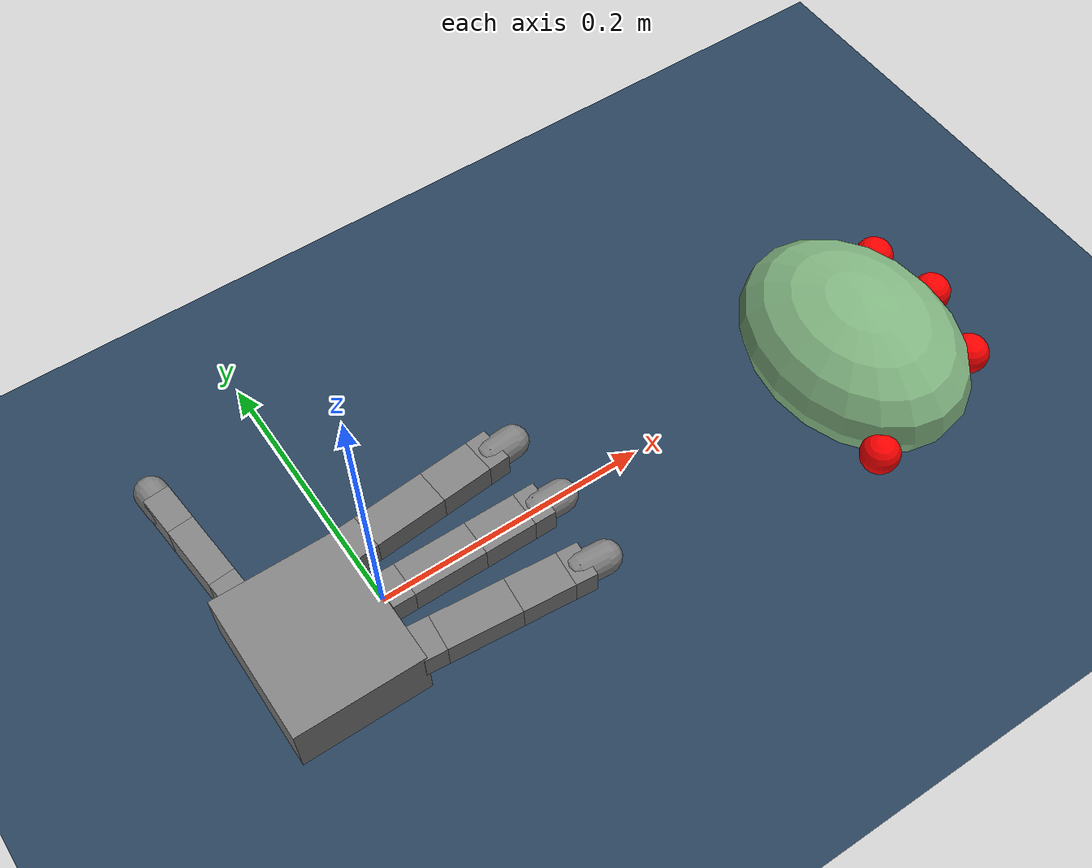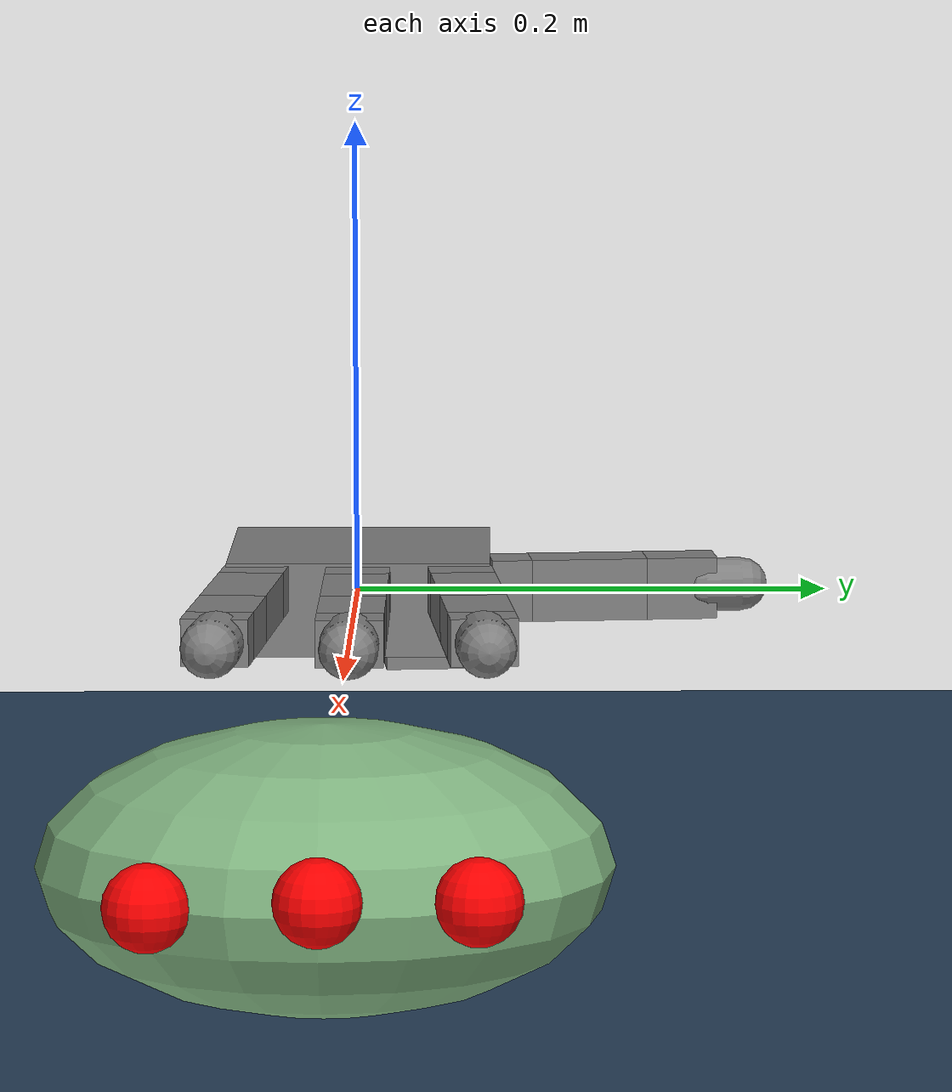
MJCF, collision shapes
<mujoco model="left_hand_closed_grab scene">
  <include file="../left_hand.xml"/>

  <statistic center="0 0 0" extent="0.3"/>

  <visual>
    <rgba haze="0.15 0.25 0.35 1"/>
    <quality shadowsize="8192"/>
    <global azimuth="220" elevation="-40"/>
  </visual>

  <asset>
    <texture type="skybox" builtin="gradient" rgb1="0.3 0.5 0.7" rgb2="0 0 0" width="512" height="3072"/>
    <texture type="2d" name="groundplane" builtin="checker" mark="edge" rgb1="0.2 0.3 0.4" rgb2="0.1 0.2 0.3"
      markrgb="0.8 0.8 0.8" width="300" height="300"/>
    <material name="groundplane" texture="groundplane" texuniform="true" texrepeat="5 5" reflectance="0.2"/>
  </asset>

  <worldbody>
    <light pos="0 0 1"/>
    <light pos="0.3 0 1.5" dir="0 0 -1" directional="true"/>
    <geom name="floor" pos="0 0 -0.1" size="0 0 0.05" type="plane" material="groundplane" contype="0" conaffinity="0"/>
    <site name="target_dot1" pos="0.46286335 -0.05693109 -0.02389508" size="0.015" rgba="1 0 0 1" />
    <site name="target_dot2" pos="0.475353206  0 -0.0191418818" size="0.015" rgba="1 0 0 1" />
    <site name="target_dot3" pos="0.46501551  0.05308591 -0.02152683" size="0.015" rgba="1 0 0 1" />
    <site name="target_dot4" pos="0.35409264 -0.08491088 -0.02898133" size="0.015" rgba="1 0 0 1" />
    <body name="object" pos="0.4 0 -0.025">
      <geom type="ellipsoid" size="0.075 0.1 0.05" rgba="0.5 0.7 0.5 1" condim="6" priority="1"
        friction="0.7 0.002 0.002" margin="-0.01" gap="0.001"/>
    </body>
  </worldbody>
</mujoco>

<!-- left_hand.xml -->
<mujoco model="allegro_left">
  <compiler angle="radian" meshdir="assets" autolimits="true"/>

  <option cone="elliptic" impratio="10"/>

  <default>
    <default class="allegro_left">
      <joint axis="0 1 0" damping=".1"/>
      <position kp="1"/>
      <geom density="800"/>

      <default class="visual">
        <geom type="mesh" contype="0" conaffinity="0" group="2" material="black"/>
        <default class="palm_visual">
          <geom mesh="base_link"/>
        </default>
        <default class="base_visual">
          <geom mesh="link_0.0"/>
        </default>
        <default class="proximal_visual">
          <geom mesh="link_1.0"/>
        </default>
        <default class="medial_visual">
          <geom mesh="link_2.0"/>
        </default>
        <default class="distal_visual">
          <geom mesh="link_3.0"/>
        </default>
        <default class="fingertip_visual">
          <geom pos="0 0 0.0267" material="white" mesh="link_3.0_tip"/>
        </default>
        <default class="thumbtip_visual">
          <geom pos="0 0 0.0423" material="white" mesh="link_15.0_tip"/>
        </default>
      </default>

      <default class="collision">
        <geom group="3" type="box" mass="0"/>
        <default class="palm_collision">
          <geom size="0.0204 0.0565 0.0475" pos="-0.0093 0 -0.0475"/>
        </default>
        <default class="base_collision">
          <geom size="0.0098 0.01375 0.0082" pos="0 0 0.0082"/>
          <default class="thumb_base_collision">
            <geom size="0.0179 0.017 0.02275" pos="-0.0179 0.009 0.0145"/>
          </default>
        </default>
        <default class="proximal_collision">
          <geom size="0.0098 0.01375 0.027" pos="0 0 0.027"/>
          <default class="thumb_proximal_collision">
            <geom size="0.0098 0.01375 0.00885" pos="0 0 0.00885"/>
          </default>
        </default>
        <default class="medial_collision">
          <geom size="0.0098 0.01375 0.0192" pos="0 0 0.0192"/>
          <default class="thumb_medial_collision">
            <geom size="0.0098 0.01375 0.0257" pos="0 0 0.0257"/>
          </default>
        </default>
        <default class="distal_collision">
          <geom size="0.0098 0.01375 0.008" pos="0 0 0.008"/>
          <default class="thumb_distal_collision">
            <geom size="0.0098 0.01375 0.0157" pos="0 0 0.0157"/>
          </default>
        </default>
        <default class="fingertip_collision">
          <geom type="capsule" size="0.012 0.01" pos="0 0 0.019"/>
          <default class="thumbtip_collision">
            <geom type="capsule" size="0.012 0.008" pos="0 0 0.035"/>
          </default>
        </default>
      </default>

      <default class="base">
        <joint axis="0 0 1" range="-0.47 0.47"/>
        <position ctrlrange="-0.47 0.47"/>
      </default>
      <default class="proximal">
        <joint range="-0.196 1.61"/>
        <position ctrlrange="-0.196 1.61"/>
      </default>
      <default class="medial">
        <joint range="-0.174 1.709"/>
        <position ctrlrange="-0.174 1.709"/>
      </default>
      <default class="distal">
        <joint range="-0.227 1.618"/>
        <position ctrlrange="-0.227 1.618"/>
      </default>
      <default class="thumb_base">
        <joint axis="1 0 0" range="0.263 1.396"/>
        <position ctrlrange="0.263 1.396"/>
      </default>
      <default class="thumb_proximal">
        <joint axis="0 0 -1" range="-0.105 1.163"/>
        <position ctrlrange="-0.105 1.163"/>
      </default>
      <default class="thumb_medial">
        <joint range="-0.189 1.644"/>
        <position ctrlrange="-0.189 1.644"/>
      </default>
      <default class="thumb_distal">
        <joint range="-0.162 1.719"/>
        <position ctrlrange="-0.162 1.719"/>
      </default>
    </default>
  </default>

  <asset>
    <material name="black" rgba="0.2 0.2 0.2 1"/>
    <material name="white" rgba="0.9 0.9 0.9 1"/>

    <mesh file="base_link_left.stl"/>
    <mesh file="link_0.0.stl"/>
    <mesh file="link_1.0.stl"/>
    <mesh file="link_2.0.stl"/>
    <mesh file="link_3.0.stl"/>
    <mesh file="link_3.0_tip.stl"/>
    <mesh file="link_12.0_left.stl"/>
    <mesh file="link_13.0.stl"/>
    <mesh file="link_14.0.stl"/>
    <mesh file="link_15.0.stl"/>
    <mesh file="link_15.0_tip.stl"/>
  </asset>

  <worldbody>
    <body name="palm" quat="0 1 0 1" childclass="allegro_left" mocap="true">
      <geom quat="1 -1 0 0" class="palm_visual" mesh="base_link_left"/>
      <geom class="palm_collision"/>
      <!-- Ring finger -->
      <body name="rf_base" pos="0 0.0435 -0.001542" quat="0.999048 -0.0436194 0 0">
        <joint name="rfj0" class="base"/>
        <geom class="base_visual"/>
        <geom class="base_collision"/>
        <body name="rf_proximal" pos="0 0 0.0164">
          <joint name="rfj1" class="proximal"/>
          <geom class="proximal_visual"/>
          <geom class="proximal_collision"/>
          <body name="rf_medial" pos="0 0 0.054">
            <joint name="rfj2" class="medial"/>
            <geom class="medial_visual"/>
            <geom class="medial_collision"/>
            <body name="rf_distal" pos="0 0 0.0384">
              <joint name="rfj3" class="distal"/>
              <geom class="distal_visual"/>
              <geom class="distal_collision"/>
              <body name="rf_tip">
                <geom class="fingertip_visual"/>
                <geom class="fingertip_collision"/>
                <site name="rf_grasp" pos="0.012 0 0.0237" size="0.001" rgba="1 0 0 1" group="4"/>
              </body>
            </body>
          </body>
        </body>
      </body>
      <!-- Middle finger -->
      <body name="mf_base" pos="0 0 0.0007">
        <joint name="mfj0" class="base"/>
        <geom class="base_visual"/>
        <geom class="base_collision"/>
        <body name="mf_proximal" pos="0 0 0.0164">
          <joint name="mfj1" class="proximal"/>
          <geom class="proximal_visual"/>
          <geom class="proximal_collision"/>
          <body name="mf_medial" pos="0 0 0.054">
            <joint name="mfj2" class="medial"/>
            <geom class="medial_visual"/>
            <geom class="medial_collision"/>
            <body name="mf_distal" pos="0 0 0.0384">
              <joint name="mfj3" class="distal"/>
              <geom class="distal_visual"/>
              <geom class="distal_collision"/>
              <body name="mf_tip">
                <geom class="fingertip_visual"/>
                <geom class="fingertip_collision"/>
                <site name="mf_grasp" pos="0.012 0 0.0237" size="0.001" rgba="1 0 0 1" group="4"/>
              </body>
            </body>
          </body>
        </body>
      </body>
      <!-- First finger -->
      <body name="ff_base" pos="0 -0.0435 -0.001542" quat="0.999048 0.0436194 0 0">
        <joint name="ffj0" class="base"/>
        <geom class="base_visual"/>
        <geom class="base_collision"/>
        <body name="ff_proximal" pos="0 0 0.0164">
          <joint name="ffj1" class="proximal"/>
          <geom class="proximal_visual"/>
          <geom class="proximal_collision"/>
          <body name="ff_medial" pos="0 0 0.054">
            <joint name="ffj2" class="medial"/>
            <geom class="medial_visual"/>
            <geom class="medial_collision"/>
            <body name="ff_distal" pos="0 0 0.0384">
              <joint name="ffj3" class="distal"/>
              <geom class="distal_visual"/>
              <geom class="distal_collision"/>
              <body name="ff_tip">
                <geom class="fingertip_visual"/>
                <geom class="fingertip_collision"/>
                <site name="ff_grasp" pos="0.012 0 0.0237" size="0.001" rgba="1 0 0 1" group="4"/>
              </body>
            </body>
          </body>
        </body>
      </body>
      <!-- Thumb -->
      <body name="th_base" pos="-0.0182 -0.019333 -0.045987" quat="0.477714 0.521334 -0.521334 0.477714">
        <joint name="thj0" class="thumb_base"/>
        <geom quat="0 1 0 0" class="visual" mesh="link_12.0_left"/>
        <geom class="thumb_base_collision"/>
        <body name="th_proximal" pos="-0.027 -0.005 0.0399">
          <joint name="thj1" class="thumb_proximal"/>
          <geom class="visual" mesh="link_13.0"/>
          <geom class="thumb_proximal_collision"/>
          <body name="th_medial" pos="0 0 0.0177">
            <joint name="thj2" class="thumb_medial"/>
            <geom class="visual" mesh="link_14.0"/>
            <geom class="thumb_medial_collision"/>
            <body name="th_distal" pos="0 0 0.0514">
              <joint name="thj3" class="thumb_distal"/>
              <geom class="visual" mesh="link_15.0"/>
              <geom class="thumb_distal_collision"/>
              <body name="th_tip">
                <geom class="thumbtip_visual"/>
                <geom class="thumbtip_collision"/>
                <site name="th_grasp" pos="0.012 0.0 0.0403" size="0.001" rgba="1 0 0 1" group="4"/>
              </body>
            </body>
          </body>
        </body>
      </body>
    </body>
  </worldbody>

  <contact>
    <exclude body1="palm" body2="ff_base"/>
    <exclude body1="palm" body2="mf_base"/>
    <exclude body1="palm" body2="rf_base"/>
    <exclude body1="palm" body2="th_base"/>
    <exclude body1="palm" body2="th_proximal"/>
  </contact>

  <actuator>
    <position name="ffa0" joint="ffj0" class="base"/>
    <position name="ffa1" joint="ffj1" class="proximal"/>
    <position name="ffa2" joint="ffj2" class="medial"/>
    <position name="ffa3" joint="ffj3" class="distal"/>
    <position name="mfa0" joint="mfj0" class="base"/>
    <position name="mfa1" joint="mfj1" class="proximal"/>
    <position name="mfa2" joint="mfj2" class="medial"/>
    <position name="mfa3" joint="mfj3" class="distal"/>
    <position name="rfa0" joint="rfj0" class="base"/>
    <position name="rfa1" joint="rfj1" class="proximal"/>
    <position name="rfa2" joint="rfj2" class="medial"/>
    <position name="rfa3" joint="rfj3" class="distal"/>
    <position name="tha0" joint="thj0" class="thumb_base"/>
    <position name="tha1" joint="thj1" class="thumb_proximal"/>
    <position name="tha2" joint="thj2" class="thumb_medial"/>
    <position name="tha3" joint="thj3" class="thumb_distal"/>
  </actuator>
</mujoco>
